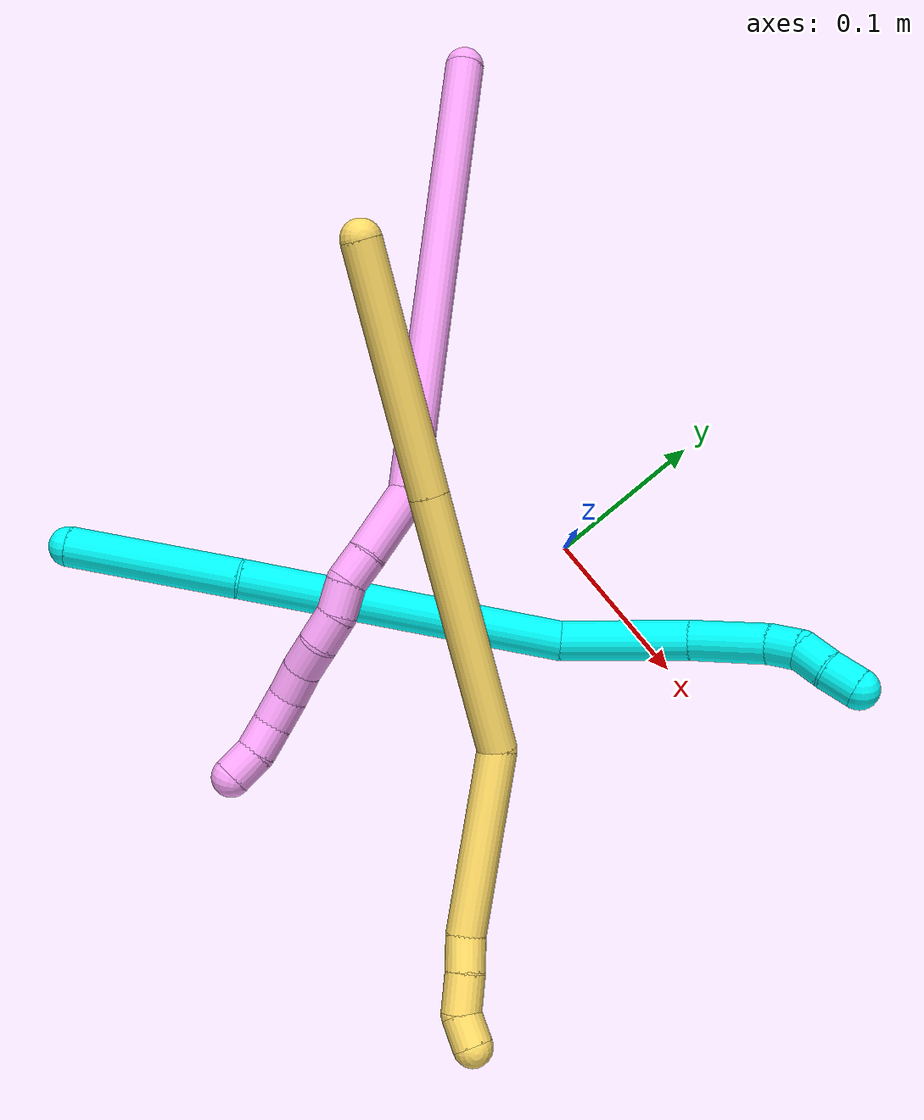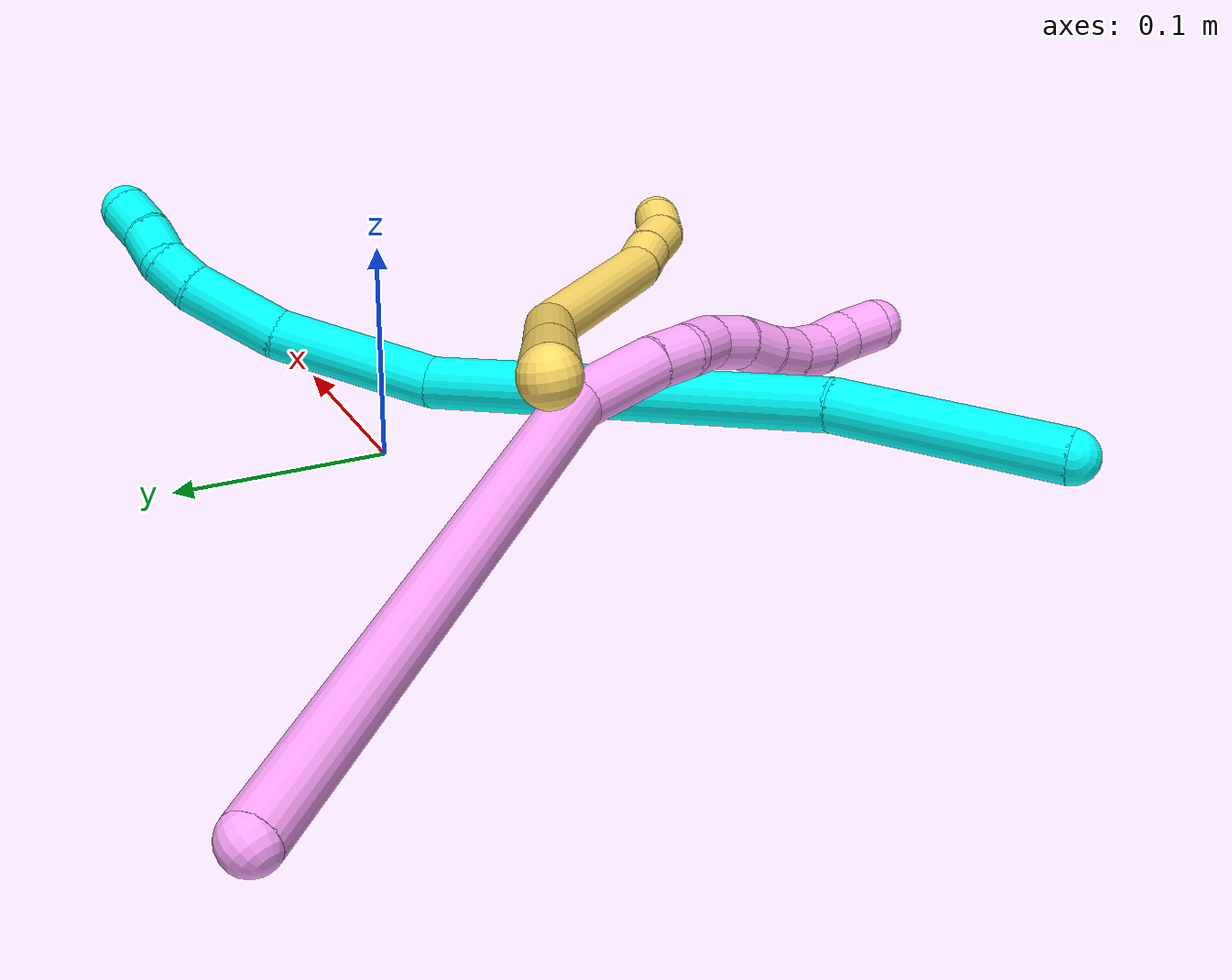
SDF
<sdf version="1.7">
 <world name="default">
  <model name="3">
   <static>0</static>
   <link name="3">
    <collision name="collision-cylinder-e_1_1_4">
     <pose>0.051277 0.013138 -0.008999 -2.17132 1.26968 -1.89921</pose>
     <geometry><cylinder><radius>0.0125</radius><length>0.107385</length></cylinder></geometry>
     <surface>
      <friction><ode><mu>1.16</mu><mu2>1.16</mu2><slip1>0</slip1><slip2>0</slip2></ode></friction>
      <contact><ode><kp>1e+06</kp><kd>1</kd><max_vel>0</max_vel><min_depth>0.001</min_depth></ode></contact>
     </surface>
    </collision>
    <visual name="visual-cylinder-e_1_1_4">
     <pose>0.051277 0.013138 -0.008999 -2.17132 1.26968 -1.89921</pose>
     <geometry><cylinder><radius>0.0125</radius><length>0.107385</length></cylinder></geometry>
     <material><ambient>0.003922 1 0.996078 1</ambient></material>
    </visual>
    <collision name="collision-cylinder-e_2_4_5">
     <pose>0.1931 0.063581 -0.04338 -2.16826 1.1085 -1.72701</pose>
     <geometry><cylinder><radius>0.0125</radius><length>0.202332</length></cylinder></geometry>
     <surface>
      <friction><ode><mu>1.16</mu><mu2>1.16</mu2><slip1>0</slip1><slip2>0</slip2></ode></friction>
      <contact><ode><kp>1e+06</kp><kd>1</kd><max_vel>0</max_vel><min_depth>0.001</min_depth></ode></contact>
     </surface>
    </collision>
    <visual name="visual-cylinder-e_2_4_5">
     <pose>0.1931 0.063581 -0.04338 -2.16826 1.1085 -1.72701</pose>
     <geometry><cylinder><radius>0.0125</radius><length>0.202332</length></cylinder></geometry>
     <material><ambient>0.003922 1 0.996078 1</ambient></material>
    </visual>
    <collision name="collision-cylinder-e_3_5_6">
     <pose>0.322819 0.109185 -0.065549 -1.20137 1.34739 -1.00099</pose>
     <geometry><cylinder><radius>0.0125</radius><length>0.080342</length></cylinder></geometry>
     <surface>
      <friction><ode><mu>1.16</mu><mu2>1.16</mu2><slip1>0</slip1><slip2>0</slip2></ode></friction>
      <contact><ode><kp>1e+06</kp><kd>1</kd><max_vel>0</max_vel><min_depth>0.001</min_depth></ode></contact>
     </surface>
    </collision>
    <visual name="visual-cylinder-e_3_5_6">
     <pose>0.322819 0.109185 -0.065549 -1.20137 1.34739 -1.00099</pose>
     <geometry><cylinder><radius>0.0125</radius><length>0.080342</length></cylinder></geometry>
     <material><ambient>0.003922 1 0.996078 1</ambient></material>
    </visual>
    <collision name="collision-cylinder-e_4_6_7">
     <pose>0.386223 0.117853 -0.059065 -0.11235 1.43578 -0.098145</pose>
     <geometry><cylinder><radius>0.0125</radius><length>0.048907</length></cylinder></geometry>
     <surface>
      <friction><ode><mu>1.16</mu><mu2>1.16</mu2><slip1>0</slip1><slip2>0</slip2></ode></friction>
      <contact><ode><kp>1e+06</kp><kd>1</kd><max_vel>0</max_vel><min_depth>0.001</min_depth></ode></contact>
     </surface>
    </collision>
    <visual name="visual-cylinder-e_4_6_7">
     <pose>0.386223 0.117853 -0.059065 -0.11235 1.43578 -0.098145</pose>
     <geometry><cylinder><radius>0.0125</radius><length>0.048907</length></cylinder></geometry>
     <material><ambient>0.003922 1 0.996078 1</ambient></material>
    </visual>
    <collision name="collision-cylinder-e_5_7_8">
     <pose>0.420251 0.116311 -0.05496 1.15916 1.36109 0.974584</pose>
     <geometry><cylinder><radius>0.0125</radius><length>0.020034</length></cylinder></geometry>
     <surface>
      <friction><ode><mu>1.16</mu><mu2>1.16</mu2><slip1>0</slip1><slip2>0</slip2></ode></friction>
      <contact><ode><kp>1e+06</kp><kd>1</kd><max_vel>0</max_vel><min_depth>0.001</min_depth></ode></contact>
     </surface>
    </collision>
    <visual name="visual-cylinder-e_5_7_8">
     <pose>0.420251 0.116311 -0.05496 1.15916 1.36109 0.974584</pose>
     <geometry><cylinder><radius>0.0125</radius><length>0.020034</length></cylinder></geometry>
     <material><ambient>0.003922 1 0.996078 1</ambient></material>
    </visual>
    <collision name="collision-cylinder-e_6_8_9">
     <pose>0.438902 0.11025 -0.056706 2.12718 1.0664 1.63104</pose>
     <geometry><cylinder><radius>0.0125</radius><length>0.020226</length></cylinder></geometry>
     <surface>
      <friction><ode><mu>1.16</mu><mu2>1.16</mu2><slip1>0</slip1><slip2>0</slip2></ode></friction>
      <contact><ode><kp>1e+06</kp><kd>1</kd><max_vel>0</max_vel><min_depth>0.001</min_depth></ode></contact>
     </surface>
    </collision>
    <visual name="visual-cylinder-e_6_8_9">
     <pose>0.438902 0.11025 -0.056706 2.12718 1.0664 1.63104</pose>
     <geometry><cylinder><radius>0.0125</radius><length>0.020226</length></cylinder></geometry>
     <material><ambient>0.003922 1 0.996078 1</ambient></material>
    </visual>
    <collision name="collision-cylinder-e_7_9_2">
     <pose>0.457344 0.103333 -0.062168 2.37629 1.17606 2.05533</pose>
     <geometry><cylinder><radius>0.0125</radius><length>0.020774</length></cylinder></geometry>
     <surface>
      <friction><ode><mu>1.16</mu><mu2>1.16</mu2><slip1>0</slip1><slip2>0</slip2></ode></friction>
      <contact><ode><kp>1e+06</kp><kd>1</kd><max_vel>0</max_vel><min_depth>0.001</min_depth></ode></contact>
     </surface>
    </collision>
    <visual name="visual-cylinder-e_7_9_2">
     <pose>0.457344 0.103333 -0.062168 2.37629 1.17606 2.05533</pose>
     <geometry><cylinder><radius>0.0125</radius><length>0.020774</length></cylinder></geometry>
     <material><ambient>0.003922 1 0.996078 1</ambient></material>
    </visual>
    <collision name="collision-sphere-2">
     <pose>0.466932 0.100565 -0.065049 0 -0 0</pose>
     <geometry><sphere><radius>0.0125</radius></sphere></geometry>
     <surface>
      <friction><ode><mu>1.16</mu><mu2>1.16</mu2><slip1>0</slip1><slip2>0</slip2></ode></friction>
      <contact><ode><kp>1e+06</kp><kd>1</kd><max_vel>0</max_vel><min_depth>0.001</min_depth></ode></contact>
     </surface>
    </collision>
    <visual name="visual-sphere-2">
     <pose>0.466932 0.100565 -0.065049 0 -0 0</pose>
     <geometry><sphere><radius>0.0125</radius></sphere></geometry>
     <material><ambient>0.003922 1 0.996078 1</ambient></material>
    </visual>
    <collision name="collision-sphere-9">
     <pose>0.447756 0.1061 -0.059288 0 -0 0</pose>
     <geometry><sphere><radius>0.0125</radius></sphere></geometry>
     <surface>
      <friction><ode><mu>1.16</mu><mu2>1.16</mu2><slip1>0</slip1><slip2>0</slip2></ode></friction>
      <contact><ode><kp>1e+06</kp><kd>1</kd><max_vel>0</max_vel><min_depth>0.001</min_depth></ode></contact>
     </surface>
    </collision>
    <visual name="visual-sphere-9">
     <pose>0.447756 0.1061 -0.059288 0 -0 0</pose>
     <geometry><sphere><radius>0.0125</radius></sphere></geometry>
     <material><ambient>0.003922 1 0.996078 1</ambient></material>
    </visual>
    <collision name="collision-sphere-4">
     <pose>0.102553 0.026277 -0.017997 0 -0 0</pose>
     <geometry><sphere><radius>0.0125</radius></sphere></geometry>
     <surface>
      <friction><ode><mu>1.16</mu><mu2>1.16</mu2><slip1>0</slip1><slip2>0</slip2></ode></friction>
      <contact><ode><kp>1e+06</kp><kd>1</kd><max_vel>0</max_vel><min_depth>0.001</min_depth></ode></contact>
     </surface>
    </collision>
    <visual name="visual-sphere-4">
     <pose>0.102553 0.026277 -0.017997 0 -0 0</pose>
     <geometry><sphere><radius>0.0125</radius></sphere></geometry>
     <material><ambient>0.003922 1 0.996078 1</ambient></material>
    </visual>
    <collision name="collision-sphere-1">
     <geometry><sphere><radius>0.0125</radius></sphere></geometry>
     <surface>
      <friction><ode><mu>1.16</mu><mu2>1.16</mu2><slip1>0</slip1><slip2>0</slip2></ode></friction>
      <contact><ode><kp>1e+06</kp><kd>1</kd><max_vel>0</max_vel><min_depth>0.001</min_depth></ode></contact>
     </surface>
    </collision>
    <visual name="visual-sphere-1">
     <geometry><sphere><radius>0.0125</radius></sphere></geometry>
     <material><ambient>0.003922 1 0.996078 1</ambient></material>
    </visual>
    <collision name="collision-sphere-8">
     <pose>0.430049 0.1144 -0.054125 0 -0 0</pose>
     <geometry><sphere><radius>0.0125</radius></sphere></geometry>
     <surface>
      <friction><ode><mu>1.16</mu><mu2>1.16</mu2><slip1>0</slip1><slip2>0</slip2></ode></friction>
      <contact><ode><kp>1e+06</kp><kd>1</kd><max_vel>0</max_vel><min_depth>0.001</min_depth></ode></contact>
     </surface>
    </collision>
    <visual name="visual-sphere-8">
     <pose>0.430049 0.1144 -0.054125 0 -0 0</pose>
     <geometry><sphere><radius>0.0125</radius></sphere></geometry>
     <material><ambient>0.003922 1 0.996078 1</ambient></material>
    </visual>
    <collision name="collision-sphere-5">
     <pose>0.283646 0.100885 -0.068763 0 -0 0</pose>
     <geometry><sphere><radius>0.0125</radius></sphere></geometry>
     <surface>
      <friction><ode><mu>1.16</mu><mu2>1.16</mu2><slip1>0</slip1><slip2>0</slip2></ode></friction>
      <contact><ode><kp>1e+06</kp><kd>1</kd><max_vel>0</max_vel><min_depth>0.001</min_depth></ode></contact>
     </surface>
    </collision>
    <visual name="visual-sphere-5">
     <pose>0.283646 0.100885 -0.068763 0 -0 0</pose>
     <geometry><sphere><radius>0.0125</radius></sphere></geometry>
     <material><ambient>0.003922 1 0.996078 1</ambient></material>
    </visual>
    <collision name="collision-sphere-6">
     <pose>0.361992 0.117484 -0.062336 0 -0 0</pose>
     <geometry><sphere><radius>0.0125</radius></sphere></geometry>
     <surface>
      <friction><ode><mu>1.16</mu><mu2>1.16</mu2><slip1>0</slip1><slip2>0</slip2></ode></friction>
      <contact><ode><kp>1e+06</kp><kd>1</kd><max_vel>0</max_vel><min_depth>0.001</min_depth></ode></contact>
     </surface>
    </collision>
    <visual name="visual-sphere-6">
     <pose>0.361992 0.117484 -0.062336 0 -0 0</pose>
     <geometry><sphere><radius>0.0125</radius></sphere></geometry>
     <material><ambient>0.003922 1 0.996078 1</ambient></material>
    </visual>
    <collision name="collision-sphere-7">
     <pose>0.410454 0.118222 -0.055794 0 -0 0</pose>
     <geometry><sphere><radius>0.0125</radius></sphere></geometry>
     <surface>
      <friction><ode><mu>1.16</mu><mu2>1.16</mu2><slip1>0</slip1><slip2>0</slip2></ode></friction>
      <contact><ode><kp>1e+06</kp><kd>1</kd><max_vel>0</max_vel><min_depth>0.001</min_depth></ode></contact>
     </surface>
    </collision>
    <visual name="visual-sphere-7">
     <pose>0.410454 0.118222 -0.055794 0 -0 0</pose>
     <geometry><sphere><radius>0.0125</radius></sphere></geometry>
     <material><ambient>0.003922 1 0.996078 1</ambient></material>
    </visual>
    <inertial>
     <pose>0.232398 0.071036 -0.042876 0 -0 0</pose>
     <mass>0.5</mass>
     <inertia>
      <ixx>-0.00036</ixx>
      <ixy>0</ixy>
      <ixz>0</ixz>
      <iyy>0.000394</iyy>
      <iyz>0</iyz>
      <izz>-0.001086</izz>
     </inertia>
    </inertial>
   </link>
   <pose>-0.193526 -0.238432 0.034596 -0.937981 -0.331363 0.681245</pose>
  </model>
  <model name="4">
   <static>0</static>
   <link name="4">
    <collision name="collision-cylinder-e_1_1_4">
     <pose>0.06498 -0.118577 -0.055182 2.00635 0.461108 0.705476</pose>
     <geometry><cylinder><radius>0.0125</radius><length>0.292082</length></cylinder></geometry>
     <surface>
      <friction><ode><mu>1.16</mu><mu2>1.16</mu2><slip1>0</slip1><slip2>0</slip2></ode></friction>
      <contact><ode><kp>1e+06</kp><kd>1</kd><max_vel>0</max_vel><min_depth>0.001</min_depth></ode></contact>
     </surface>
    </collision>
    <visual name="visual-cylinder-e_1_1_4">
     <pose>0.06498 -0.118577 -0.055182 2.00635 0.461108 0.705476</pose>
     <geometry><cylinder><radius>0.0125</radius><length>0.292082</length></cylinder></geometry>
     <material><ambient>1 0.65098 0.996078 1</ambient></material>
    </visual>
    <collision name="collision-cylinder-e_2_4_5">
     <pose>0.145607 -0.253604 -0.110557 1.58258 0.760386 0.768539</pose>
     <geometry><cylinder><radius>0.0125</radius><length>0.045409</length></cylinder></geometry>
     <surface>
      <friction><ode><mu>1.16</mu><mu2>1.16</mu2><slip1>0</slip1><slip2>0</slip2></ode></friction>
      <contact><ode><kp>1e+06</kp><kd>1</kd><max_vel>0</max_vel><min_depth>0.001</min_depth></ode></contact>
     </surface>
    </collision>
    <visual name="visual-cylinder-e_2_4_5">
     <pose>0.145607 -0.253604 -0.110557 1.58258 0.760386 0.768539</pose>
     <geometry><cylinder><radius>0.0125</radius><length>0.045409</length></cylinder></geometry>
     <material><ambient>1 0.65098 0.996078 1</ambient></material>
    </visual>
    <collision name="collision-cylinder-e_3_5_6">
     <pose>0.167719 -0.277839 -0.109858 1.4566 0.689776 0.620127</pose>
     <geometry><cylinder><radius>0.0125</radius><length>0.020316</length></cylinder></geometry>
     <surface>
      <friction><ode><mu>1.16</mu><mu2>1.16</mu2><slip1>0</slip1><slip2>0</slip2></ode></friction>
      <contact><ode><kp>1e+06</kp><kd>1</kd><max_vel>0</max_vel><min_depth>0.001</min_depth></ode></contact>
     </surface>
    </collision>
    <visual name="visual-cylinder-e_3_5_6">
     <pose>0.167719 -0.277839 -0.109858 1.4566 0.689776 0.620127</pose>
     <geometry><cylinder><radius>0.0125</radius><length>0.020316</length></cylinder></geometry>
     <material><ambient>1 0.65098 0.996078 1</ambient></material>
    </visual>
    <collision name="collision-cylinder-e_4_6_7">
     <pose>0.177905 -0.295301 -0.10988 1.66506 0.36563 0.400907</pose>
     <geometry><cylinder><radius>0.0125</radius><length>0.020818</length></cylinder></geometry>
     <surface>
      <friction><ode><mu>1.16</mu><mu2>1.16</mu2><slip1>0</slip1><slip2>0</slip2></ode></friction>
      <contact><ode><kp>1e+06</kp><kd>1</kd><max_vel>0</max_vel><min_depth>0.001</min_depth></ode></contact>
     </surface>
    </collision>
    <visual name="visual-cylinder-e_4_6_7">
     <pose>0.177905 -0.295301 -0.10988 1.66506 0.36563 0.400907</pose>
     <geometry><cylinder><radius>0.0125</radius><length>0.020818</length></cylinder></geometry>
     <material><ambient>1 0.65098 0.996078 1</ambient></material>
    </visual>
    <collision name="collision-cylinder-e_5_7_8">
     <pose>0.185963 -0.314362 -0.108557 1.33666 0.422489 0.335444</pose>
     <geometry><cylinder><radius>0.0125</radius><length>0.021151</length></cylinder></geometry>
     <surface>
      <friction><ode><mu>1.16</mu><mu2>1.16</mu2><slip1>0</slip1><slip2>0</slip2></ode></friction>
      <contact><ode><kp>1e+06</kp><kd>1</kd><max_vel>0</max_vel><min_depth>0.001</min_depth></ode></contact>
     </surface>
    </collision>
    <visual name="visual-cylinder-e_5_7_8">
     <pose>0.185963 -0.314362 -0.108557 1.33666 0.422489 0.335444</pose>
     <geometry><cylinder><radius>0.0125</radius><length>0.021151</length></cylinder></geometry>
     <material><ambient>1 0.65098 0.996078 1</ambient></material>
    </visual>
    <collision name="collision-cylinder-e_6_8_9">
     <pose>0.192747 -0.332915 -0.102979 1.22144 0.24571 0.172436</pose>
     <geometry><cylinder><radius>0.0125</radius><length>0.020125</length></cylinder></geometry>
     <surface>
      <friction><ode><mu>1.16</mu><mu2>1.16</mu2><slip1>0</slip1><slip2>0</slip2></ode></friction>
      <contact><ode><kp>1e+06</kp><kd>1</kd><max_vel>0</max_vel><min_depth>0.001</min_depth></ode></contact>
     </surface>
    </collision>
    <visual name="visual-cylinder-e_6_8_9">
     <pose>0.192747 -0.332915 -0.102979 1.22144 0.24571 0.172436</pose>
     <geometry><cylinder><radius>0.0125</radius><length>0.020125</length></cylinder></geometry>
     <material><ambient>1 0.65098 0.996078 1</ambient></material>
    </visual>
    <collision name="collision-cylinder-e_7_9_10">
     <pose>0.198024 -0.35145 -0.097555 1.35196 0.286789 0.230578</pose>
     <geometry><cylinder><radius>0.0125</radius><length>0.020003</length></cylinder></geometry>
     <surface>
      <friction><ode><mu>1.16</mu><mu2>1.16</mu2><slip1>0</slip1><slip2>0</slip2></ode></friction>
      <contact><ode><kp>1e+06</kp><kd>1</kd><max_vel>0</max_vel><min_depth>0.001</min_depth></ode></contact>
     </surface>
    </collision>
    <visual name="visual-cylinder-e_7_9_10">
     <pose>0.198024 -0.35145 -0.097555 1.35196 0.286789 0.230578</pose>
     <geometry><cylinder><radius>0.0125</radius><length>0.020003</length></cylinder></geometry>
     <material><ambient>1 0.65098 0.996078 1</ambient></material>
    </visual>
    <collision name="collision-cylinder-e_8_10_11">
     <pose>0.205494 -0.369637 -0.09439 1.44867 0.481237 0.427561</pose>
     <geometry><cylinder><radius>0.0125</radius><length>0.020054</length></cylinder></geometry>
     <surface>
      <friction><ode><mu>1.16</mu><mu2>1.16</mu2><slip1>0</slip1><slip2>0</slip2></ode></friction>
      <contact><ode><kp>1e+06</kp><kd>1</kd><max_vel>0</max_vel><min_depth>0.001</min_depth></ode></contact>
     </surface>
    </collision>
    <visual name="visual-cylinder-e_8_10_11">
     <pose>0.205494 -0.369637 -0.09439 1.44867 0.481237 0.427561</pose>
     <geometry><cylinder><radius>0.0125</radius><length>0.020054</length></cylinder></geometry>
     <material><ambient>1 0.65098 0.996078 1</ambient></material>
    </visual>
    <collision name="collision-cylinder-e_9_11_12">
     <pose>0.216218 -0.386402 -0.093444 1.58799 0.653466 0.663988</pose>
     <geometry><cylinder><radius>0.0125</radius><length>0.020012</length></cylinder></geometry>
     <surface>
      <friction><ode><mu>1.16</mu><mu2>1.16</mu2><slip1>0</slip1><slip2>0</slip2></ode></friction>
      <contact><ode><kp>1e+06</kp><kd>1</kd><max_vel>0</max_vel><min_depth>0.001</min_depth></ode></contact>
     </surface>
    </collision>
    <visual name="visual-cylinder-e_9_11_12">
     <pose>0.216218 -0.386402 -0.093444 1.58799 0.653466 0.663988</pose>
     <geometry><cylinder><radius>0.0125</radius><length>0.020012</length></cylinder></geometry>
     <material><ambient>1 0.65098 0.996078 1</ambient></material>
    </visual>
    <collision name="collision-cylinder-e_10_12_2">
     <pose>0.229648 -0.400954 -0.09195 1.32889 0.823508 0.659167</pose>
     <geometry><cylinder><radius>0.0125</radius><length>0.02003</length></cylinder></geometry>
     <surface>
      <friction><ode><mu>1.16</mu><mu2>1.16</mu2><slip1>0</slip1><slip2>0</slip2></ode></friction>
      <contact><ode><kp>1e+06</kp><kd>1</kd><max_vel>0</max_vel><min_depth>0.001</min_depth></ode></contact>
     </surface>
    </collision>
    <visual name="visual-cylinder-e_10_12_2">
     <pose>0.229648 -0.400954 -0.09195 1.32889 0.823508 0.659167</pose>
     <geometry><cylinder><radius>0.0125</radius><length>0.02003</length></cylinder></geometry>
     <material><ambient>1 0.65098 0.996078 1</ambient></material>
    </visual>
    <collision name="collision-sphere-2">
     <pose>0.236994 -0.407562 -0.090319 0 -0 0</pose>
     <geometry><sphere><radius>0.0125</radius></sphere></geometry>
     <surface>
      <friction><ode><mu>1.16</mu><mu2>1.16</mu2><slip1>0</slip1><slip2>0</slip2></ode></friction>
      <contact><ode><kp>1e+06</kp><kd>1</kd><max_vel>0</max_vel><min_depth>0.001</min_depth></ode></contact>
     </surface>
    </collision>
    <visual name="visual-sphere-2">
     <pose>0.236994 -0.407562 -0.090319 0 -0 0</pose>
     <geometry><sphere><radius>0.0125</radius></sphere></geometry>
     <material><ambient>1 0.65098 0.996078 1</ambient></material>
    </visual>
    <collision name="collision-sphere-12">
     <pose>0.222301 -0.394345 -0.09358 0 -0 0</pose>
     <geometry><sphere><radius>0.0125</radius></sphere></geometry>
     <surface>
      <friction><ode><mu>1.16</mu><mu2>1.16</mu2><slip1>0</slip1><slip2>0</slip2></ode></friction>
      <contact><ode><kp>1e+06</kp><kd>1</kd><max_vel>0</max_vel><min_depth>0.001</min_depth></ode></contact>
     </surface>
    </collision>
    <visual name="visual-sphere-12">
     <pose>0.222301 -0.394345 -0.09358 0 -0 0</pose>
     <geometry><sphere><radius>0.0125</radius></sphere></geometry>
     <material><ambient>1 0.65098 0.996078 1</ambient></material>
    </visual>
    <collision name="collision-sphere-11">
     <pose>0.210135 -0.378459 -0.093307 0 -0 0</pose>
     <geometry><sphere><radius>0.0125</radius></sphere></geometry>
     <surface>
      <friction><ode><mu>1.16</mu><mu2>1.16</mu2><slip1>0</slip1><slip2>0</slip2></ode></friction>
      <contact><ode><kp>1e+06</kp><kd>1</kd><max_vel>0</max_vel><min_depth>0.001</min_depth></ode></contact>
     </surface>
    </collision>
    <visual name="visual-sphere-11">
     <pose>0.210135 -0.378459 -0.093307 0 -0 0</pose>
     <geometry><sphere><radius>0.0125</radius></sphere></geometry>
     <material><ambient>1 0.65098 0.996078 1</ambient></material>
    </visual>
    <collision name="collision-sphere-10">
     <pose>0.200853 -0.360815 -0.095473 0 -0 0</pose>
     <geometry><sphere><radius>0.0125</radius></sphere></geometry>
     <surface>
      <friction><ode><mu>1.16</mu><mu2>1.16</mu2><slip1>0</slip1><slip2>0</slip2></ode></friction>
      <contact><ode><kp>1e+06</kp><kd>1</kd><max_vel>0</max_vel><min_depth>0.001</min_depth></ode></contact>
     </surface>
    </collision>
    <visual name="visual-sphere-10">
     <pose>0.200853 -0.360815 -0.095473 0 -0 0</pose>
     <geometry><sphere><radius>0.0125</radius></sphere></geometry>
     <material><ambient>1 0.65098 0.996078 1</ambient></material>
    </visual>
    <collision name="collision-sphere-9">
     <pose>0.195194 -0.342086 -0.099638 0 -0 0</pose>
     <geometry><sphere><radius>0.0125</radius></sphere></geometry>
     <surface>
      <friction><ode><mu>1.16</mu><mu2>1.16</mu2><slip1>0</slip1><slip2>0</slip2></ode></friction>
      <contact><ode><kp>1e+06</kp><kd>1</kd><max_vel>0</max_vel><min_depth>0.001</min_depth></ode></contact>
     </surface>
    </collision>
    <visual name="visual-sphere-9">
     <pose>0.195194 -0.342086 -0.099638 0 -0 0</pose>
     <geometry><sphere><radius>0.0125</radius></sphere></geometry>
     <material><ambient>1 0.65098 0.996078 1</ambient></material>
    </visual>
    <collision name="collision-sphere-4">
     <pose>0.129959 -0.237155 -0.110364 0 -0 0</pose>
     <geometry><sphere><radius>0.0125</radius></sphere></geometry>
     <surface>
      <friction><ode><mu>1.16</mu><mu2>1.16</mu2><slip1>0</slip1><slip2>0</slip2></ode></friction>
      <contact><ode><kp>1e+06</kp><kd>1</kd><max_vel>0</max_vel><min_depth>0.001</min_depth></ode></contact>
     </surface>
    </collision>
    <visual name="visual-sphere-4">
     <pose>0.129959 -0.237155 -0.110364 0 -0 0</pose>
     <geometry><sphere><radius>0.0125</radius></sphere></geometry>
     <material><ambient>1 0.65098 0.996078 1</ambient></material>
    </visual>
    <collision name="collision-sphere-1">
     <geometry><sphere><radius>0.0125</radius></sphere></geometry>
     <surface>
      <friction><ode><mu>1.16</mu><mu2>1.16</mu2><slip1>0</slip1><slip2>0</slip2></ode></friction>
      <contact><ode><kp>1e+06</kp><kd>1</kd><max_vel>0</max_vel><min_depth>0.001</min_depth></ode></contact>
     </surface>
    </collision>
    <visual name="visual-sphere-1">
     <geometry><sphere><radius>0.0125</radius></sphere></geometry>
     <material><ambient>1 0.65098 0.996078 1</ambient></material>
    </visual>
    <collision name="collision-sphere-8">
     <pose>0.190299 -0.323744 -0.10632 0 -0 0</pose>
     <geometry><sphere><radius>0.0125</radius></sphere></geometry>
     <surface>
      <friction><ode><mu>1.16</mu><mu2>1.16</mu2><slip1>0</slip1><slip2>0</slip2></ode></friction>
      <contact><ode><kp>1e+06</kp><kd>1</kd><max_vel>0</max_vel><min_depth>0.001</min_depth></ode></contact>
     </surface>
    </collision>
    <visual name="visual-sphere-8">
     <pose>0.190299 -0.323744 -0.10632 0 -0 0</pose>
     <geometry><sphere><radius>0.0125</radius></sphere></geometry>
     <material><ambient>1 0.65098 0.996078 1</ambient></material>
    </visual>
    <collision name="collision-sphere-5">
     <pose>0.161255 -0.270054 -0.110751 0 -0 0</pose>
     <geometry><sphere><radius>0.0125</radius></sphere></geometry>
     <surface>
      <friction><ode><mu>1.16</mu><mu2>1.16</mu2><slip1>0</slip1><slip2>0</slip2></ode></friction>
      <contact><ode><kp>1e+06</kp><kd>1</kd><max_vel>0</max_vel><min_depth>0.001</min_depth></ode></contact>
     </surface>
    </collision>
    <visual name="visual-sphere-5">
     <pose>0.161255 -0.270054 -0.110751 0 -0 0</pose>
     <geometry><sphere><radius>0.0125</radius></sphere></geometry>
     <material><ambient>1 0.65098 0.996078 1</ambient></material>
    </visual>
    <collision name="collision-sphere-6">
     <pose>0.174183 -0.285623 -0.108965 0 -0 0</pose>
     <geometry><sphere><radius>0.0125</radius></sphere></geometry>
     <surface>
      <friction><ode><mu>1.16</mu><mu2>1.16</mu2><slip1>0</slip1><slip2>0</slip2></ode></friction>
      <contact><ode><kp>1e+06</kp><kd>1</kd><max_vel>0</max_vel><min_depth>0.001</min_depth></ode></contact>
     </surface>
    </collision>
    <visual name="visual-sphere-6">
     <pose>0.174183 -0.285623 -0.108965 0 -0 0</pose>
     <geometry><sphere><radius>0.0125</radius></sphere></geometry>
     <material><ambient>1 0.65098 0.996078 1</ambient></material>
    </visual>
    <collision name="collision-sphere-7">
     <pose>0.181626 -0.304979 -0.110795 0 -0 0</pose>
     <geometry><sphere><radius>0.0125</radius></sphere></geometry>
     <surface>
      <friction><ode><mu>1.16</mu><mu2>1.16</mu2><slip1>0</slip1><slip2>0</slip2></ode></friction>
      <contact><ode><kp>1e+06</kp><kd>1</kd><max_vel>0</max_vel><min_depth>0.001</min_depth></ode></contact>
     </surface>
    </collision>
    <visual name="visual-sphere-7">
     <pose>0.181626 -0.304979 -0.110795 0 -0 0</pose>
     <geometry><sphere><radius>0.0125</radius></sphere></geometry>
     <material><ambient>1 0.65098 0.996078 1</ambient></material>
    </visual>
    <inertial>
     <pose>0.115047 -0.202996 -0.075164 0 -0 0</pose>
     <mass>0.5</mass>
     <inertia>
      <ixx>0.002678</ixx>
      <ixy>0</ixy>
      <ixz>0</ixz>
      <iyy>0.001074</iyy>
      <iyz>0</iyz>
      <izz>0.000764</izz>
     </inertia>
    </inertial>
   </link>
   <pose>-0.283815 0.151647 0.011499 2.42978 -0.755404 -1.86366</pose>
  </model>
  <model name="5">
   <static>0</static>
   <link name="5">
    <collision name="collision-cylinder-e_1_1_4">
     <pose>0.039719 -0.065608 0.008706 1.43887 0.540522 0.476204</pose>
     <geometry><cylinder><radius>0.0125</radius><length>0.154374</length></cylinder></geometry>
     <surface>
      <friction><ode><mu>1.16</mu><mu2>1.16</mu2><slip1>0</slip1><slip2>0</slip2></ode></friction>
      <contact><ode><kp>1e+06</kp><kd>1</kd><max_vel>0</max_vel><min_depth>0.001</min_depth></ode></contact>
     </surface>
    </collision>
    <visual name="visual-cylinder-e_1_1_4">
     <pose>0.039719 -0.065608 0.008706 1.43887 0.540522 0.476204</pose>
     <geometry><cylinder><radius>0.0125</radius><length>0.154374</length></cylinder></geometry>
     <material><ambient>1 0.858824 0.4 1</ambient></material>
    </visual>
    <collision name="collision-cylinder-e_2_4_5">
     <pose>0.121821 -0.201294 0.025245 1.45948 0.541189 0.486416</pose>
     <geometry><cylinder><radius>0.0125</radius><length>0.164543</length></cylinder></geometry>
     <surface>
      <friction><ode><mu>1.16</mu><mu2>1.16</mu2><slip1>0</slip1><slip2>0</slip2></ode></friction>
      <contact><ode><kp>1e+06</kp><kd>1</kd><max_vel>0</max_vel><min_depth>0.001</min_depth></ode></contact>
     </surface>
    </collision>
    <visual name="visual-cylinder-e_2_4_5">
     <pose>0.121821 -0.201294 0.025245 1.45948 0.541189 0.486416</pose>
     <geometry><cylinder><radius>0.0125</radius><length>0.164543</length></cylinder></geometry>
     <material><ambient>1 0.858824 0.4 1</ambient></material>
    </visual>
    <collision name="collision-cylinder-e_3_5_6">
     <pose>0.212739 -0.301294 0.028961 1.70752 1.01415 1.13463</pose>
     <geometry><cylinder><radius>0.0125</radius><length>0.114332</length></cylinder></geometry>
     <surface>
      <friction><ode><mu>1.16</mu><mu2>1.16</mu2><slip1>0</slip1><slip2>0</slip2></ode></friction>
      <contact><ode><kp>1e+06</kp><kd>1</kd><max_vel>0</max_vel><min_depth>0.001</min_depth></ode></contact>
     </surface>
    </collision>
    <visual name="visual-cylinder-e_3_5_6">
     <pose>0.212739 -0.301294 0.028961 1.70752 1.01415 1.13463</pose>
     <geometry><cylinder><radius>0.0125</radius><length>0.114332</length></cylinder></geometry>
     <material><ambient>1 0.858824 0.4 1</ambient></material>
    </visual>
    <collision name="collision-cylinder-e_4_6_7">
     <pose>0.269601 -0.337724 0.021966 1.98722 0.863526 1.23162</pose>
     <geometry><cylinder><radius>0.0125</radius><length>0.021907</length></cylinder></geometry>
     <surface>
      <friction><ode><mu>1.16</mu><mu2>1.16</mu2><slip1>0</slip1><slip2>0</slip2></ode></friction>
      <contact><ode><kp>1e+06</kp><kd>1</kd><max_vel>0</max_vel><min_depth>0.001</min_depth></ode></contact>
     </surface>
    </collision>
    <visual name="visual-cylinder-e_4_6_7">
     <pose>0.269601 -0.337724 0.021966 1.98722 0.863526 1.23162</pose>
     <geometry><cylinder><radius>0.0125</radius><length>0.021907</length></cylinder></geometry>
     <material><ambient>1 0.858824 0.4 1</ambient></material>
    </visual>
    <collision name="collision-cylinder-e_5_7_8">
     <pose>0.28796 -0.351015 0.016704 1.90863 0.949072 1.25451</pose>
     <geometry><cylinder><radius>0.0125</radius><length>0.024685</length></cylinder></geometry>
     <surface>
      <friction><ode><mu>1.16</mu><mu2>1.16</mu2><slip1>0</slip1><slip2>0</slip2></ode></friction>
      <contact><ode><kp>1e+06</kp><kd>1</kd><max_vel>0</max_vel><min_depth>0.001</min_depth></ode></contact>
     </surface>
    </collision>
    <visual name="visual-cylinder-e_5_7_8">
     <pose>0.28796 -0.351015 0.016704 1.90863 0.949072 1.25451</pose>
     <geometry><cylinder><radius>0.0125</radius><length>0.024685</length></cylinder></geometry>
     <material><ambient>1 0.858824 0.4 1</ambient></material>
    </visual>
    <collision name="collision-cylinder-e_6_8_2">
     <pose>0.302696 -0.365868 0.010534 2.0096 0.485474 0.74327</pose>
     <geometry><cylinder><radius>0.0125</radius><length>0.02016</length></cylinder></geometry>
     <surface>
      <friction><ode><mu>1.16</mu><mu2>1.16</mu2><slip1>0</slip1><slip2>0</slip2></ode></friction>
      <contact><ode><kp>1e+06</kp><kd>1</kd><max_vel>0</max_vel><min_depth>0.001</min_depth></ode></contact>
     </surface>
    </collision>
    <visual name="visual-cylinder-e_6_8_2">
     <pose>0.302696 -0.365868 0.010534 2.0096 0.485474 0.74327</pose>
     <geometry><cylinder><radius>0.0125</radius><length>0.02016</length></cylinder></geometry>
     <material><ambient>1 0.858824 0.4 1</ambient></material>
    </visual>
    <collision name="collision-sphere-2">
     <pose>0.3074 -0.373939 0.006746 0 -0 0</pose>
     <geometry><sphere><radius>0.0125</radius></sphere></geometry>
     <surface>
      <friction><ode><mu>1.16</mu><mu2>1.16</mu2><slip1>0</slip1><slip2>0</slip2></ode></friction>
      <contact><ode><kp>1e+06</kp><kd>1</kd><max_vel>0</max_vel><min_depth>0.001</min_depth></ode></contact>
     </surface>
    </collision>
    <visual name="visual-sphere-2">
     <pose>0.3074 -0.373939 0.006746 0 -0 0</pose>
     <geometry><sphere><radius>0.0125</radius></sphere></geometry>
     <material><ambient>1 0.858824 0.4 1</ambient></material>
    </visual>
    <collision name="collision-sphere-4">
     <pose>0.079438 -0.131216 0.017412 0 -0 0</pose>
     <geometry><sphere><radius>0.0125</radius></sphere></geometry>
     <surface>
      <friction><ode><mu>1.16</mu><mu2>1.16</mu2><slip1>0</slip1><slip2>0</slip2></ode></friction>
      <contact><ode><kp>1e+06</kp><kd>1</kd><max_vel>0</max_vel><min_depth>0.001</min_depth></ode></contact>
     </surface>
    </collision>
    <visual name="visual-sphere-4">
     <pose>0.079438 -0.131216 0.017412 0 -0 0</pose>
     <geometry><sphere><radius>0.0125</radius></sphere></geometry>
     <material><ambient>1 0.858824 0.4 1</ambient></material>
    </visual>
    <collision name="collision-sphere-1">
     <geometry><sphere><radius>0.0125</radius></sphere></geometry>
     <surface>
      <friction><ode><mu>1.16</mu><mu2>1.16</mu2><slip1>0</slip1><slip2>0</slip2></ode></friction>
      <contact><ode><kp>1e+06</kp><kd>1</kd><max_vel>0</max_vel><min_depth>0.001</min_depth></ode></contact>
     </surface>
    </collision>
    <visual name="visual-sphere-1">
     <geometry><sphere><radius>0.0125</radius></sphere></geometry>
     <material><ambient>1 0.858824 0.4 1</ambient></material>
    </visual>
    <collision name="collision-sphere-8">
     <pose>0.297993 -0.357798 0.014321 0 -0 0</pose>
     <geometry><sphere><radius>0.0125</radius></sphere></geometry>
     <surface>
      <friction><ode><mu>1.16</mu><mu2>1.16</mu2><slip1>0</slip1><slip2>0</slip2></ode></friction>
      <contact><ode><kp>1e+06</kp><kd>1</kd><max_vel>0</max_vel><min_depth>0.001</min_depth></ode></contact>
     </surface>
    </collision>
    <visual name="visual-sphere-8">
     <pose>0.297993 -0.357798 0.014321 0 -0 0</pose>
     <geometry><sphere><radius>0.0125</radius></sphere></geometry>
     <material><ambient>1 0.858824 0.4 1</ambient></material>
    </visual>
    <collision name="collision-sphere-5">
     <pose>0.164204 -0.271373 0.033078 0 -0 0</pose>
     <geometry><sphere><radius>0.0125</radius></sphere></geometry>
     <surface>
      <friction><ode><mu>1.16</mu><mu2>1.16</mu2><slip1>0</slip1><slip2>0</slip2></ode></friction>
      <contact><ode><kp>1e+06</kp><kd>1</kd><max_vel>0</max_vel><min_depth>0.001</min_depth></ode></contact>
     </surface>
    </collision>
    <visual name="visual-sphere-5">
     <pose>0.164204 -0.271373 0.033078 0 -0 0</pose>
     <geometry><sphere><radius>0.0125</radius></sphere></geometry>
     <material><ambient>1 0.858824 0.4 1</ambient></material>
    </visual>
    <collision name="collision-sphere-6">
     <pose>0.261275 -0.331215 0.024844 0 -0 0</pose>
     <geometry><sphere><radius>0.0125</radius></sphere></geometry>
     <surface>
      <friction><ode><mu>1.16</mu><mu2>1.16</mu2><slip1>0</slip1><slip2>0</slip2></ode></friction>
      <contact><ode><kp>1e+06</kp><kd>1</kd><max_vel>0</max_vel><min_depth>0.001</min_depth></ode></contact>
     </surface>
    </collision>
    <visual name="visual-sphere-6">
     <pose>0.261275 -0.331215 0.024844 0 -0 0</pose>
     <geometry><sphere><radius>0.0125</radius></sphere></geometry>
     <material><ambient>1 0.858824 0.4 1</ambient></material>
    </visual>
    <collision name="collision-sphere-7">
     <pose>0.277927 -0.344233 0.019087 0 -0 0</pose>
     <geometry><sphere><radius>0.0125</radius></sphere></geometry>
     <surface>
      <friction><ode><mu>1.16</mu><mu2>1.16</mu2><slip1>0</slip1><slip2>0</slip2></ode></friction>
      <contact><ode><kp>1e+06</kp><kd>1</kd><max_vel>0</max_vel><min_depth>0.001</min_depth></ode></contact>
     </surface>
    </collision>
    <visual name="visual-sphere-7">
     <pose>0.277927 -0.344233 0.019087 0 -0 0</pose>
     <geometry><sphere><radius>0.0125</radius></sphere></geometry>
     <material><ambient>1 0.858824 0.4 1</ambient></material>
    </visual>
    <inertial>
     <pose>0.139232 -0.202272 0.01983 0 -0 0</pose>
     <mass>0.5</mass>
     <inertia><ixx>0.000918</ixx><ixy>0</ixy><ixz>0</ixz><iyy>0.00064</iyy><iyz>0</iyz><izz>0.00019</izz></inertia>
    </inertial>
   </link>
   <pose>-0.205904 0.009223 0.120315 2.8695 -0.015748 -1.41294</pose>
  </model>
 </world>
</sdf>
